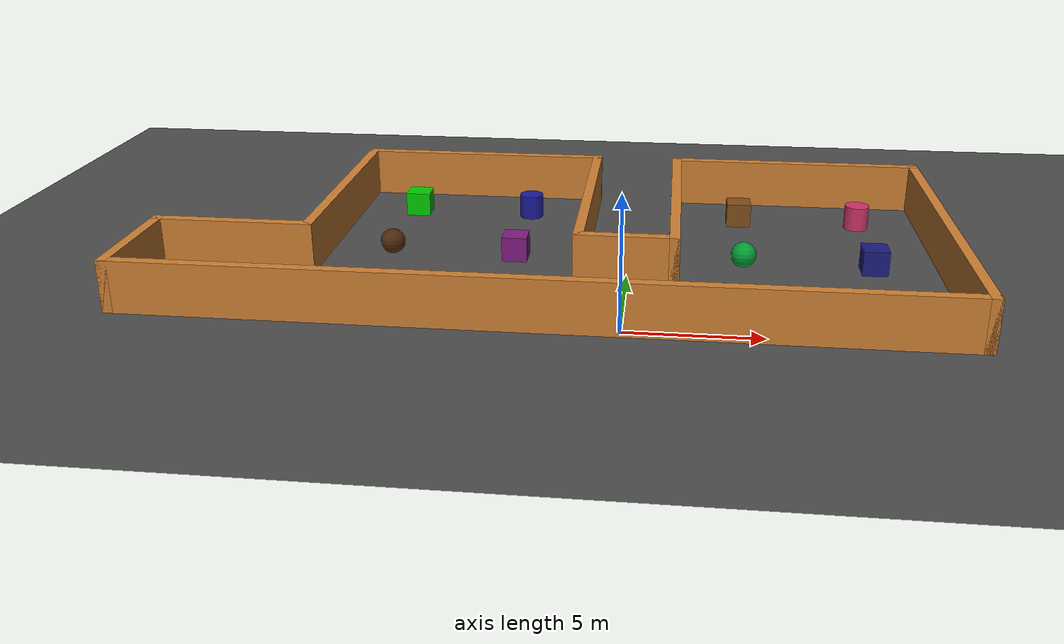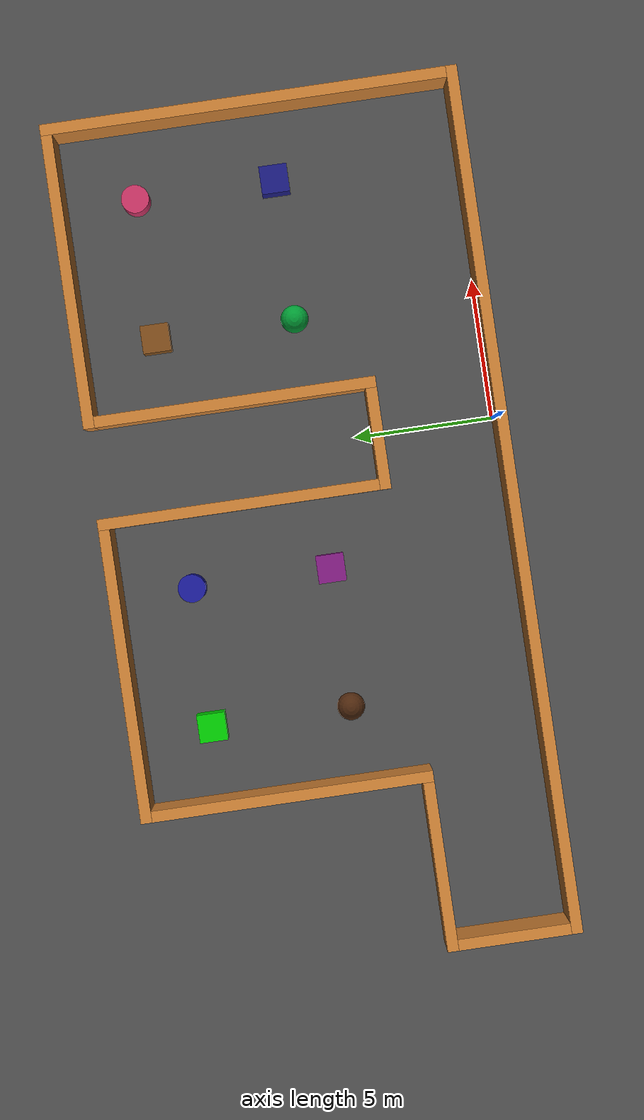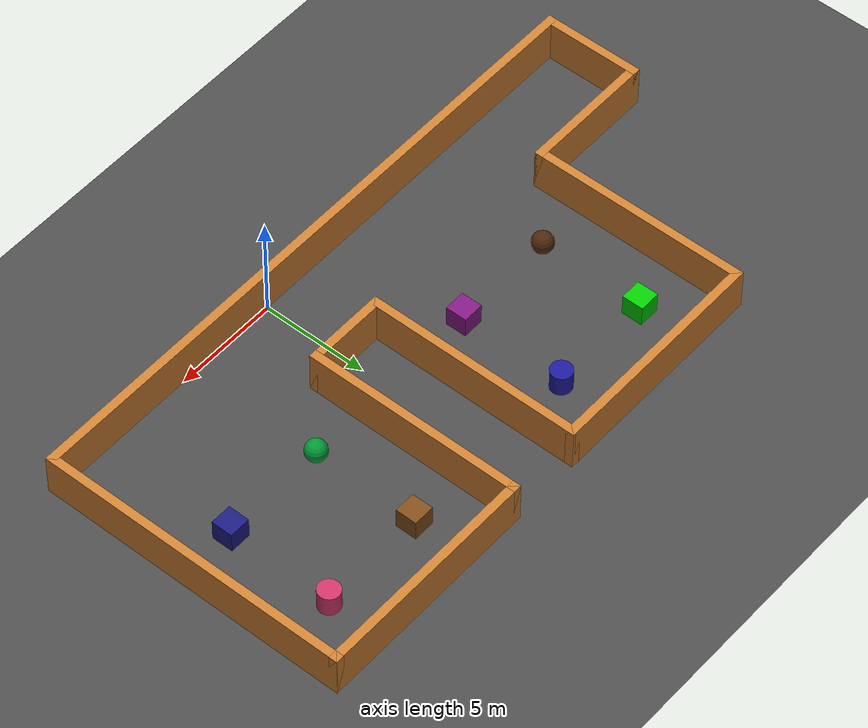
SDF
<?xml version="1.0" ?>
<sdf version="1.6">
  <world name="perceptual_aliasing_world">
    <!-- IGNITION GAZEBO SYSTEM PLUGINS -->
    <plugin filename="ignition-gazebo-physics-system" name="ignition::gazebo::systems::Physics"/>
    <plugin filename="ignition-gazebo-user-commands-system" name="ignition::gazebo::systems::UserCommands"/>
    <plugin filename="ignition-gazebo-scene-broadcaster-system" name="ignition::gazebo::systems::SceneBroadcaster"/>
    <plugin filename="ignition-gazebo-sensors-system" name="ignition::gazebo::systems::Sensors">
      <render_engine>ogre2</render_engine>
    </plugin>
    <plugin filename="ignition-gazebo-imu-system" name="ignition::gazebo::systems::Imu"/>

    <!-- PHYSICS -->
    <gravity>0 0 -9.8</gravity>
    <physics name="default_physics" type="ode">
      <max_step_size>0.001</max_step_size>
      <real_time_factor>1.0</real_time_factor>
      <real_time_update_rate>1000</real_time_update_rate>
    </physics>

    <!-- LIGHT -->
    <light name="sun" type="directional">
      <cast_shadows>true</cast_shadows>
      <pose>0 0 10 0 0 0</pose>
      <diffuse>0.8 0.8 0.8 1</diffuse>
      <specular>0.2 0.2 0.2 1</specular>
      <direction>-0.5 0.1 -0.9</direction>
    </light>

    <!-- GROUND -->
    <model name="ground_plane">
      <static>true</static>
      <link name="link">
        <collision name="collision">
          <geometry>
            <plane>
              <normal>0 0 1</normal>
              <size>100 100</size>
            </plane>
          </geometry>
          <!-- Thêm thuộc tính bề mặt và ma sát tại đây -->
          <surface>
            <friction>
              <ode>
                <mu>100.0</mu>  <!-- Hệ số ma sát tĩnh theo trục chính -->
                <mu2>50.0</mu2> <!-- Hệ số ma sát tĩnh theo trục phụ -->
              </ode>
            </friction>
          </surface>
        </collision>
        <visual name="visual">
          <geometry>
            <plane>
              <normal>0 0 1</normal>
              <size>100 100</size>
            </plane>
          </geometry>
          <material>
            <ambient>0.3 0.3 0.3 1</ambient>
            <diffuse>0.3 0.3 0.3 1</diffuse>
          </material>
        </visual>
      </link>
    </model>

    <!-- WALLS -->
    <model name="walls">
      <static>true</static>
      <link name="link">
        <!-- 1. Bottom Wall -->
        <collision name="c1"><pose>-3 -0.2 1 0 0 0</pose><geometry><box><size>30.8 0.4 2</size></box></geometry></collision>
        <visual name="v1"><pose>-3 -0.2 1 0 0 0</pose><geometry><box><size>30.8 0.4 2</size></box></geometry><material><ambient>0.8 0.5 0.2 1</ambient><diffuse>0.8 0.5 0.2 1</diffuse></material></visual>

        <!-- 2. Right Wall -->
        <collision name="c2"><pose>12.2 7 1 0 0 0</pose><geometry><box><size>0.4 14.8 2</size></box></geometry></collision>
        <visual name="v2"><pose>12.2 7 1 0 0 0</pose><geometry><box><size>0.4 14.8 2</size></box></geometry><material><ambient>0.8 0.5 0.2 1</ambient><diffuse>0.8 0.5 0.2 1</diffuse></material></visual>

        <!-- 3. Top Wall Right -->
        <collision name="c3"><pose>7 14.2 1 0 0 0</pose><geometry><box><size>10.8 0.4 2</size></box></geometry></collision>
        <visual name="v3"><pose>7 14.2 1 0 0 0</pose><geometry><box><size>10.8 0.4 2</size></box></geometry><material><ambient>0.8 0.5 0.2 1</ambient><diffuse>0.8 0.5 0.2 1</diffuse></material></visual>

        <!-- 4. Left Wall Right -->
        <collision name="c4"><pose>1.8 9.2 1 0 0 0</pose><geometry><box><size>0.4 10.4 2</size></box></geometry></collision>
        <visual name="v4"><pose>1.8 9.2 1 0 0 0</pose><geometry><box><size>0.4 10.4 2</size></box></geometry><material><ambient>0.8 0.5 0.2 1</ambient><diffuse>0.8 0.5 0.2 1</diffuse></material></visual>

        <!-- 5. Middle Corridor Ceiling -->
        <collision name="c5"><pose>0 4.2 1 0 0 0</pose><geometry><box><size>4.0 0.4 2</size></box></geometry></collision>
        <visual name="v5"><pose>0 4.2 1 0 0 0</pose><geometry><box><size>4.0 0.4 2</size></box></geometry><material><ambient>0.8 0.5 0.2 1</ambient><diffuse>0.8 0.5 0.2 1</diffuse></material></visual>

        <!-- 6. Right Wall Left -->
        <collision name="c6"><pose>-1.8 9.2 1 0 0 0</pose><geometry><box><size>0.4 10.4 2</size></box></geometry></collision>
        <visual name="v6"><pose>-1.8 9.2 1 0 0 0</pose><geometry><box><size>0.4 10.4 2</size></box></geometry><material><ambient>0.8 0.5 0.2 1</ambient><diffuse>0.8 0.5 0.2 1</diffuse></material></visual>

        <!-- 7. Top Wall Left -->
        <collision name="c7"><pose>-7 14.2 1 0 0 0</pose><geometry><box><size>10.8 0.4 2</size></box></geometry></collision>
        <visual name="v7"><pose>-7 14.2 1 0 0 0</pose><geometry><box><size>10.8 0.4 2</size></box></geometry><material><ambient>0.8 0.5 0.2 1</ambient><diffuse>0.8 0.5 0.2 1</diffuse></material></visual>

        <!-- 8. Left Wall Left -->
        <collision name="c8"><pose>-12.2 9.2 1 0 0 0</pose><geometry><box><size>0.4 10.4 2</size></box></geometry></collision>
        <visual name="v8"><pose>-12.2 9.2 1 0 0 0</pose><geometry><box><size>0.4 10.4 2</size></box></geometry><material><ambient>0.8 0.5 0.2 1</ambient><diffuse>0.8 0.5 0.2 1</diffuse></material></visual>

        <!-- 9. Left Extension Corridor Ceiling -->
        <collision name="c9"><pose>-15.2 4.2 1 0 0 0</pose><geometry><box><size>6.4 0.4 2</size></box></geometry></collision>
        <visual name="v9"><pose>-15.2 4.2 1 0 0 0</pose><geometry><box><size>6.4 0.4 2</size></box></geometry><material><ambient>0.8 0.5 0.2 1</ambient><diffuse>0.8 0.5 0.2 1</diffuse></material></visual>

        <!-- 10. Far Left Wall -->
        <collision name="c10"><pose>-18.2 2 1 0 0 0</pose><geometry><box><size>0.4 4.8 2</size></box></geometry></collision>
        <visual name="v10"><pose>-18.2 2 1 0 0 0</pose><geometry><box><size>0.4 4.8 2</size></box></geometry><material><ambient>0.8 0.5 0.2 1</ambient><diffuse>0.8 0.5 0.2 1</diffuse></material></visual>
      </link>
    </model>

    <!-- OBJECTS -->
    <model name="objects">
      <static>true</static>
      <link name="link">
        <!-- Left Room Objects -->
        <collision name="obj1_c"><pose>-9.5 11.5 0.5 0 0 0</pose><geometry><box><size>1 1 1</size></box></geometry></collision>
        <visual name="obj1_v"><pose>-9.5 11.5 0.5 0 0 0</pose><geometry><box><size>1 1 1</size></box></geometry><material><ambient>0 0.8 0 1</ambient><diffuse>0 0.8 0 1</diffuse></material></visual>

        <collision name="obj2_c"><pose>-4.5 11.5 0.5 0 0 0</pose><geometry><cylinder><radius>0.5</radius><length>1</length></cylinder></geometry></collision>
        <visual name="obj2_v"><pose>-4.5 11.5 0.5 0 0 0</pose><geometry><cylinder><radius>0.5</radius><length>1</length></cylinder></geometry><material><ambient>0.1 0.1 0.6 1</ambient><diffuse>0.1 0.1 0.6 1</diffuse></material></visual>

        <collision name="obj3_c"><pose>-9.5 6.5 0.5 0 0 0</pose><geometry><sphere><radius>0.5</radius></sphere></geometry></collision>
        <visual name="obj3_v"><pose>-9.5 6.5 0.5 0 0 0</pose><geometry><sphere><radius>0.5</radius></sphere></geometry><material><ambient>0.3 0.15 0.05 1</ambient><diffuse>0.3 0.15 0.05 1</diffuse></material></visual>

        <collision name="obj4_c"><pose>-4.5 6.5 0.5 0 0 0</pose><geometry><box><size>1 1 1</size></box></geometry></collision>
        <visual name="obj4_v"><pose>-4.5 6.5 0.5 0 0 0</pose><geometry><box><size>1 1 1</size></box></geometry><material><ambient>0.5 0.1 0.5 1</ambient><diffuse>0.5 0.1 0.5 1</diffuse></material></visual>

        <!-- Right Room Objects -->
        <collision name="obj5_c"><pose>4.5 11.5 0.5 0 0 0</pose><geometry><box><size>1 1 1</size></box></geometry></collision>
        <visual name="obj5_v"><pose>4.5 11.5 0.5 0 0 0</pose><geometry><box><size>1 1 1</size></box></geometry><material><ambient>0.5 0.3 0.1 1</ambient><diffuse>0.5 0.3 0.1 1</diffuse></material></visual>

        <collision name="obj6_c"><pose>9.5 11.5 0.5 0 0 0</pose><geometry><cylinder><radius>0.5</radius><length>1</length></cylinder></geometry></collision>
        <visual name="obj6_v"><pose>9.5 11.5 0.5 0 0 0</pose><geometry><cylinder><radius>0.5</radius><length>1</length></cylinder></geometry><material><ambient>0.8 0.2 0.4 1</ambient><diffuse>0.8 0.2 0.4 1</diffuse></material></visual>

        <collision name="obj7_c"><pose>4.5 6.5 0.5 0 0 0</pose><geometry><sphere><radius>0.5</radius></sphere></geometry></collision>
        <visual name="obj7_v"><pose>4.5 6.5 0.5 0 0 0</pose><geometry><sphere><radius>0.5</radius></sphere></geometry><material><ambient>0 0.6 0.2 1</ambient><diffuse>0 0.6 0.2 1</diffuse></material></visual>

        <collision name="obj8_c"><pose>9.5 6.5 0.5 0 0 0</pose><geometry><box><size>1 1 1</size></box></geometry></collision>
        <visual name="obj8_v"><pose>9.5 6.5 0.5 0 0 0</pose><geometry><box><size>1 1 1</size></box></geometry><material><ambient>0.1 0.1 0.5 1</ambient><diffuse>0.1 0.1 0.5 1</diffuse></material></visual>
      </link>
    </model>

    <!-- CAMERA -->
    <gui fullscreen="0">
      <camera name="user_camera">
        <pose>-3 -15 25 0 1.0 1.57</pose>
        <view_controller>orbit</view_controller>
        <projection_type>perspective</projection_type>
      </camera>
    </gui>

  </world>
</sdf>
